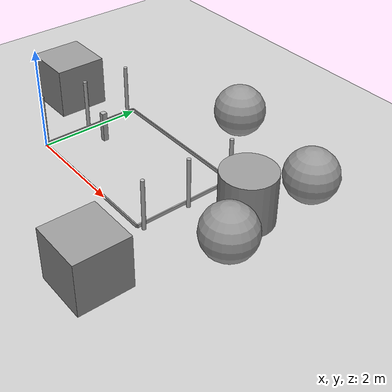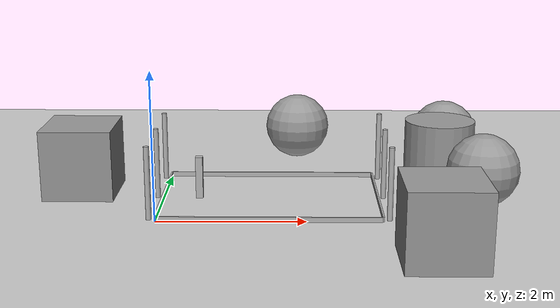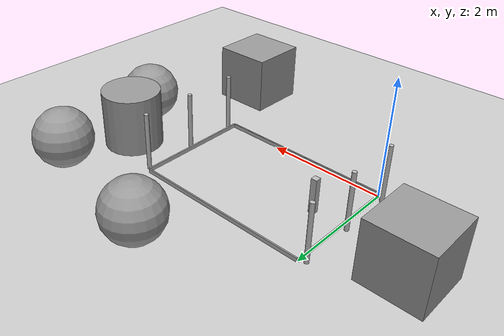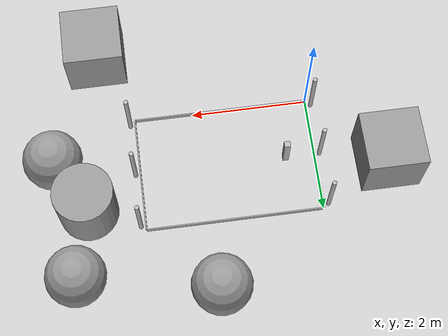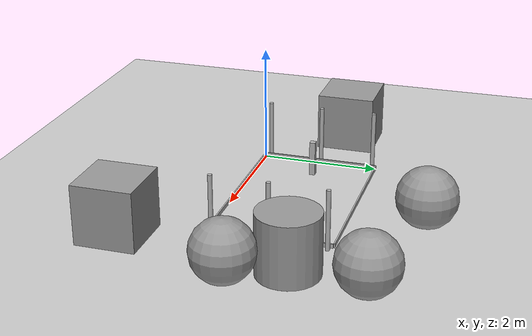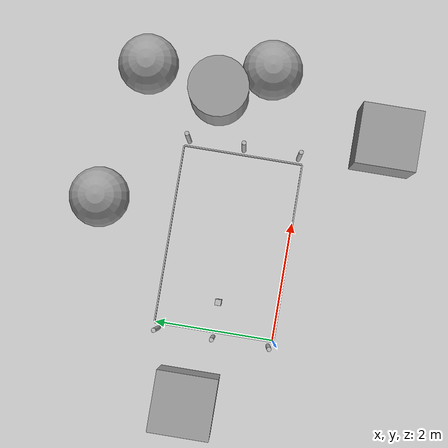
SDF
<?xml version="1.0" ?>
<sdf version="1.6">
  <world name="bordered_world">

    <!-- Ground Plane -->
    <include>
      <uri>model://ground_plane</uri>
    </include>

    <!-- Light Source -->
    <include>
      <uri>model://sun</uri>
    </include>

    <!-- Walls are 2x300x30mm and 2x200x30mm and are with their centre on the 2x3m box -->
    <!-- Walls -->
    <model name="wall_north">
      <static>true</static>
      <link name="link">
        <collision name="collision">
          <geometry>
            <box>
              <size>3 0.022 0.07</size>
            </box>
          </geometry>
          <collide_bitmask>0</collide_bitmask>
        </collision>
        <visual name="visual">
          <geometry>
            <box>
              <size>3 0.022 0.07</size>
            </box>
            <material>
              <ambient>0.7 0.7 0.7 1</ambient>
            </material>
          </geometry>
        </visual>
        <pose>1.5 2.011 0.035 0 0 0</pose>
      </link>
    </model>

    <model name="wall_south">
      <static>true</static>
      <link name="link">
        <collision name="collision">
          <geometry>
            <box>
              <size>3 0.022 0.07</size>
            </box>
          </geometry>
          <collide_bitmask>0</collide_bitmask>
        </collision>
        <visual name="visual">
          <geometry>
            <box>
              <size>3 0.022 0.07</size>
            </box>
            <material>
              <ambient>0.7 0.7 0.7 1</ambient>
            </material>
          </geometry>
        </visual>
        <pose>1.5 -0.011 0.035 0 0 0</pose>
      </link>
    </model>

    <model name="wall_east">
      <static>true</static>
      <link name="link">
        <collision name="collision">
          <geometry>
            <box>
              <size>0.022 2 0.07</size>
            </box>
          </geometry>
          <collide_bitmask>0</collide_bitmask>
        </collision>
        <visual name="visual">
          <geometry>
            <box>
              <size>0.022 2 0.07</size>
            </box>
            <material>
              <ambient>0.7 0.7 0.7 1</ambient>
            </material>
          </geometry>
        </visual>
        <pose>3.011 1 0.035 0 0 0</pose>
      </link>
    </model>

    <model name="wall_west">
      <static>true</static>
      <link name="link">
        <collision name="collision">
          <geometry>
            <box>
              <size>0.022 2 0.07</size>
            </box>
          </geometry>
          <collide_bitmask>0</collide_bitmask>
        </collision>
        <visual name="visual">
          <geometry>
            <box>
              <size>0.022 2 0.07</size>
            </box>
            <material>
              <ambient>0.7 0.7 0.7 1</ambient>
            </material>
          </geometry>
        </visual>
        <pose>-0.011 1 0.035 0 0 0</pose>
      </link>
    </model>

    <!-- Poles are 10x10x100mm and are 0.022m outside the 0.022 walls and the outer ones are 0.2 inside when using model B support -->
        <!-- Poles on short sides (2m sides) -->
    <model name="pole_southwest">
      <static>true</static>
      <link name="link">
        <collision name="collision">
          <geometry>
            <cylinder>
              <radius>0.0365</radius>
              <length>1.0</length>
            </cylinder>
          </geometry>
        </collision>
        <visual name="visual">
          <geometry>
            <cylinder>
              <radius>0.0365</radius>
              <length>1.0</length>
            </cylinder>
          </geometry>
        </visual>
        <pose>-0.094 0.07 0.5 0 0 0</pose>
      </link>
    </model>

    <model name="pole_southeast">
      <static>true</static>
      <link name="link">
        <collision name="collision">
          <geometry>
            <cylinder>
              <radius>0.0365</radius>
              <length>1.0</length>
            </cylinder>
          </geometry>
        </collision>
        <visual name="visual">
          <geometry>
            <cylinder>
              <radius>0.0365</radius>
              <length>1.0</length>
            </cylinder>
          </geometry>
        </visual>
        <pose>3.094 0.07 0.5 0 0 0</pose>
      </link>
    </model>

    <model name="pole_northwest">
      <static>true</static>
      <link name="link">
        <collision name="collision">
          <geometry>
            <cylinder>
              <radius>0.0365</radius>
              <length>1.0</length>
            </cylinder>
          </geometry>
        </collision>
        <visual name="visual">
          <geometry>
            <cylinder>
              <radius>0.0365</radius>
              <length>1.0</length>
            </cylinder>
          </geometry>
        </visual>
        <pose>-0.094 1.93 0.5 0 0 0</pose>
      </link>
    </model>

    <model name="pole_northeast">
      <static>true</static>
      <link name="link">
        <collision name="collision">
          <geometry>
            <cylinder>
              <radius>0.0365</radius>
              <length>1.0</length>
            </cylinder>
          </geometry>
        </collision>
        <visual name="visual">
          <geometry>
            <cylinder>
              <radius>0.0365</radius>
              <length>1.0</length>
            </cylinder>
          </geometry>
        </visual>
        <pose>3.094 1.93 0.5 0 0 0</pose>
      </link>
    </model>

    <model name="pole_middleast">
      <static>true</static>
      <link name="link">
        <collision name="collision">
          <geometry>
            <cylinder>
              <radius>0.0365</radius>
              <length>1.0</length>
            </cylinder>
          </geometry>
        </collision>
        <visual name="visual">
          <geometry>
            <cylinder>
              <radius>0.0365</radius>
              <length>1.0</length>
            </cylinder>
          </geometry>
        </visual>
        <pose>3.094 1 0.5 0 0 0</pose>
      </link>
    </model>

    <model name="pole_middlewest">
      <static>true</static>
      <link name="link">
        <collision name="collision">
          <geometry>
            <cylinder>
              <radius>0.0365</radius>
              <length>1.0</length>
            </cylinder>
          </geometry>
        </collision>
        <visual name="visual">
          <geometry>
            <cylinder>
              <radius>0.0365</radius>
              <length>1.0</length>
            </cylinder>
          </geometry>
        </visual>
        <pose>-0.094 1 0.5 0 0 0</pose>
      </link>
    </model>

    <model name="pole_other_robot">
      <static>true</static>
      <link name="link">
        <collision name="collision">
          <geometry>
            <box>
              <size>0.1 0.1 0.6</size>
            </box>
          </geometry>
        </collision>
        <visual name="visual">
          <geometry>
            <box>
              <size>0.1 0.1 0.6</size>
            </box>
          </geometry>
        </visual>
        <pose>0.5 1 0.3 0 0 0</pose>
      </link>
    </model>

    <!-- Disctractions -->

    <model name='unit_box'>
      <pose>-1.19528 1.27891 0.5 0 -0 0</pose>
      <link name='link'>
        <inertial>
          <mass>1</mass>
          <inertia>
            <ixx>0.166667</ixx>
            <ixy>0</ixy>
            <ixz>0</ixz>
            <iyy>0.166667</iyy>
            <iyz>0</iyz>
            <izz>0.166667</izz>
          </inertia>
          <pose>0 0 0 0 -0 0</pose>
        </inertial>
        <collision name='collision'>
          <geometry>
            <box>
              <size>1 1 1</size>
            </box>
          </geometry>
          <max_contacts>10</max_contacts>
          <surface>
            <contact>
              <ode/>
            </contact>
            <bounce/>
            <friction>
              <torsional>
                <ode/>
              </torsional>
              <ode/>
            </friction>
          </surface>
        </collision>
        <visual name='visual'>
          <geometry>
            <box>
              <size>1 1 1</size>
            </box>
          </geometry>
          <material>
            <script>
              <name>Gazebo/Grey</name>
              <uri>file://media/materials/scripts/gazebo.material</uri>
            </script>
          </material>
        </visual>
        <self_collide>0</self_collide>
        <enable_wind>0</enable_wind>
        <kinematic>0</kinematic>
      </link>
    </model>
    <model name='unit_box_0'>
      <pose>3.57098 -1.29222 0.5 0 -0 0</pose>
      <link name='link'>
        <inertial>
          <mass>1</mass>
          <inertia>
            <ixx>0.166667</ixx>
            <ixy>0</ixy>
            <ixz>0</ixz>
            <iyy>0.166667</iyy>
            <iyz>0</iyz>
            <izz>0.166667</izz>
          </inertia>
          <pose>0 0 0 0 -0 0</pose>
        </inertial>
        <collision name='collision'>
          <geometry>
            <box>
              <size>1 1 1</size>
            </box>
          </geometry>
          <max_contacts>10</max_contacts>
          <surface>
            <contact>
              <ode/>
            </contact>
            <bounce/>
            <friction>
              <torsional>
                <ode/>
              </torsional>
              <ode/>
            </friction>
          </surface>
        </collision>
        <visual name='visual'>
          <geometry>
            <box>
              <size>1 1 1</size>
            </box>
          </geometry>
          <material>
            <script>
              <name>Gazebo/Grey</name>
              <uri>file://media/materials/scripts/gazebo.material</uri>
            </script>
          </material>
        </visual>
        <self_collide>0</self_collide>
        <enable_wind>0</enable_wind>
        <kinematic>0</kinematic>
      </link>
    </model>
    <model name='unit_sphere'>
      <pose>1.89232 3.21259 0.5 0 -0 0</pose>
      <link name='link'>
        <inertial>
          <mass>1</mass>
          <inertia>
            <ixx>0.1</ixx>
            <ixy>0</ixy>
            <ixz>0</ixz>
            <iyy>0.1</iyy>
            <iyz>0</iyz>
            <izz>0.1</izz>
          </inertia>
          <pose>0 0 0 0 -0 0</pose>
        </inertial>
        <collision name='collision'>
          <geometry>
            <sphere>
              <radius>0.5</radius>
            </sphere>
          </geometry>
          <max_contacts>10</max_contacts>
          <surface>
            <contact>
              <ode/>
            </contact>
            <bounce/>
            <friction>
              <torsional>
                <ode/>
              </torsional>
              <ode/>
            </friction>
          </surface>
        </collision>
        <visual name='visual'>
          <geometry>
            <sphere>
              <radius>0.5</radius>
            </sphere>
          </geometry>
          <material>
            <script>
              <name>Gazebo/Grey</name>
              <uri>file://media/materials/scripts/gazebo.material</uri>
            </script>
          </material>
        </visual>
        <self_collide>0</self_collide>
        <enable_wind>0</enable_wind>
        <kinematic>0</kinematic>
      </link>
    </model>
    <model name='unit_sphere_0'>
      <pose>4.19202 2.7811 0.5 0 -0 0</pose>
      <link name='link'>
        <inertial>
          <mass>1</mass>
          <inertia>
            <ixx>0.1</ixx>
            <ixy>0</ixy>
            <ixz>0</ixz>
            <iyy>0.1</iyy>
            <iyz>0</iyz>
            <izz>0.1</izz>
          </inertia>
          <pose>0 0 0 0 -0 0</pose>
        </inertial>
        <collision name='collision'>
          <geometry>
            <sphere>
              <radius>0.5</radius>
            </sphere>
          </geometry>
          <max_contacts>10</max_contacts>
          <surface>
            <contact>
              <ode/>
            </contact>
            <bounce/>
            <friction>
              <torsional>
                <ode/>
              </torsional>
              <ode/>
            </friction>
          </surface>
        </collision>
        <visual name='visual'>
          <geometry>
            <sphere>
              <radius>0.5</radius>
            </sphere>
          </geometry>
          <material>
            <script>
              <name>Gazebo/Grey</name>
              <uri>file://media/materials/scripts/gazebo.material</uri>
            </script>
          </material>
        </visual>
        <self_collide>0</self_collide>
        <enable_wind>0</enable_wind>
        <kinematic>0</kinematic>
      </link>
    </model>
    <model name='unit_sphere_1'>
      <pose>4.4246 0.734855 0.5 0 -0 0</pose>
      <link name='link'>
        <inertial>
          <mass>1</mass>
          <inertia>
            <ixx>0.1</ixx>
            <ixy>0</ixy>
            <ixz>0</ixz>
            <iyy>0.1</iyy>
            <iyz>0</iyz>
            <izz>0.1</izz>
          </inertia>
          <pose>0 0 0 0 -0 0</pose>
        </inertial>
        <collision name='collision'>
          <geometry>
            <sphere>
              <radius>0.5</radius>
            </sphere>
          </geometry>
          <max_contacts>10</max_contacts>
          <surface>
            <contact>
              <ode/>
            </contact>
            <bounce/>
            <friction>
              <torsional>
                <ode/>
              </torsional>
              <ode/>
            </friction>
          </surface>
        </collision>
        <visual name='visual'>
          <geometry>
            <sphere>
              <radius>0.5</radius>
            </sphere>
          </geometry>
          <material>
            <script>
              <name>Gazebo/Grey</name>
              <uri>file://media/materials/scripts/gazebo.material</uri>
            </script>
          </material>
        </visual>
        <self_collide>0</self_collide>
        <enable_wind>0</enable_wind>
        <kinematic>0</kinematic>
      </link>
    </model>
    <model name='unit_cylinder_0'>
      <pose>3.93498 1.55822 0.5 0 -0 0</pose>
      <link name='link'>
        <inertial>
          <mass>1</mass>
          <inertia>
            <ixx>0.145833</ixx>
            <ixy>0</ixy>
            <ixz>0</ixz>
            <iyy>0.145833</iyy>
            <iyz>0</iyz>
            <izz>0.125</izz>
          </inertia>
          <pose>0 0 0 0 -0 0</pose>
        </inertial>
        <collision name='collision'>
          <geometry>
            <cylinder>
              <radius>0.5</radius>
              <length>1</length>
            </cylinder>
          </geometry>
          <max_contacts>10</max_contacts>
          <surface>
            <contact>
              <ode/>
            </contact>
            <bounce/>
            <friction>
              <torsional>
                <ode/>
              </torsional>
              <ode/>
            </friction>
          </surface>
        </collision>
        <visual name='visual'>
          <geometry>
            <cylinder>
              <radius>0.5</radius>
              <length>1</length>
            </cylinder>
          </geometry>
          <material>
            <script>
              <name>Gazebo/Grey</name>
              <uri>file://media/materials/scripts/gazebo.material</uri>
            </script>
          </material>
        </visual>
        <self_collide>0</self_collide>
        <enable_wind>0</enable_wind>
        <kinematic>0</kinematic>
      </link>
    </model>

    <!-- Spotlight -->
    <light name="spotlight" type="spot">
      <pose>2.7 0.5 1.0 0 0 0</pose>
      <diffuse>1.0 0.8 0.6 1</diffuse>
      <specular>1.0 0.8 0.6 1</specular>
      <attenuation>
        <range>10.0</range>
        <constant>0.5</constant>
        <linear>0.01</linear>
        <quadratic>0.001</quadratic>
      </attenuation>
      <direction>0 0 -1</direction>
      <spot>
        <inner_angle>0.1</inner_angle>
        <outer_angle>0.4</outer_angle>
        <falloff>0.5</falloff>
      </spot>
    </light>

    <!-- Spotlight -->
    <light name="spotlight2" type="spot">
      <pose>0.4 1.6 1.0 0 0 0</pose>
      <diffuse>1.0 0.8 0.6 1</diffuse>
      <specular>1.0 0.8 0.6 1</specular>
      <attenuation>
        <range>10.0</range>
        <constant>0.5</constant>
        <linear>0.01</linear>
        <quadratic>0.001</quadratic>
      </attenuation>
      <direction>0 0 -1</direction>
      <spot>
        <inner_angle>0.1</inner_angle>
        <outer_angle>0.4</outer_angle>
        <falloff>0.5</falloff>
      </spot>
    </light>

    <gui fullscreen='0'>
      <camera name='user_camera'>
        <pose>2.2356 -2.30977 4.18347 0 0.987643 1.5722</pose>
        <view_controller>orbit</view_controller>
        <projection_type>perspective</projection_type>
      </camera>
    </gui>

  </world>
</sdf>
